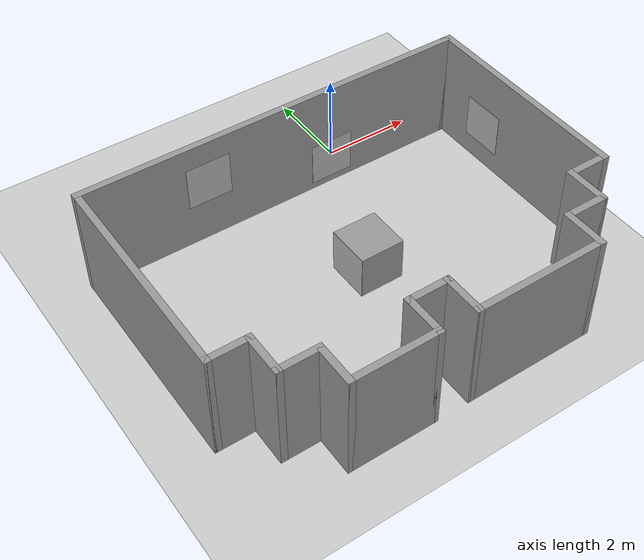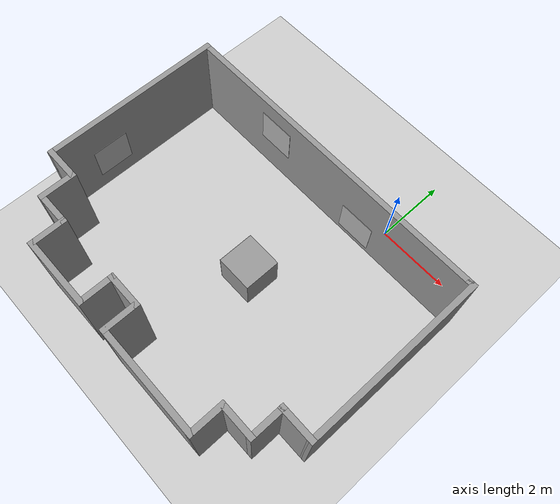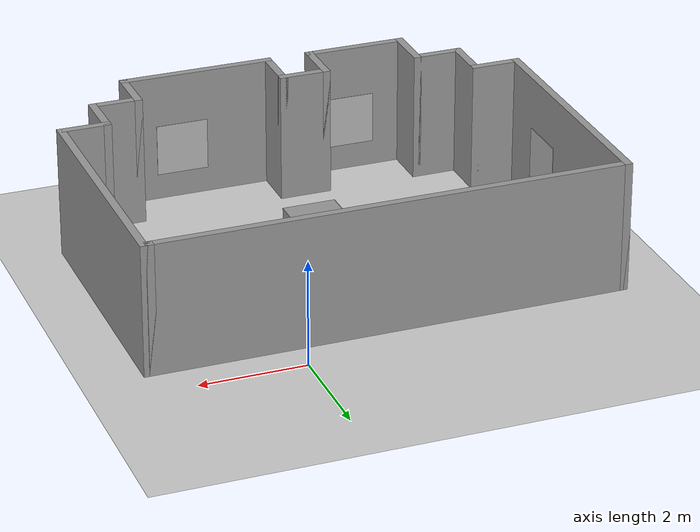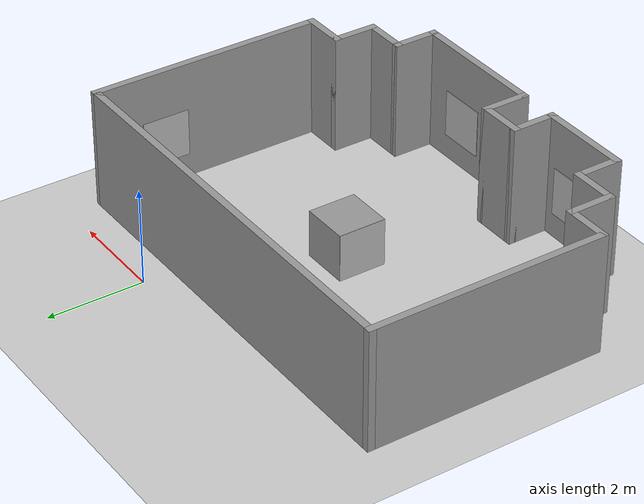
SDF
<sdf version="1.6">
 <world name="default">
  <light name="sun" type="directional">
   <pose>0 0 10 0 -0 0</pose>
   <diffuse>0.8 0.8 0.8 1</diffuse>
   <specular>0.2 0.2 0.2 1</specular>
   <attenuation>
    <range>1000</range>
    <constant>0.9</constant>
    <linear>0.01</linear>
    <quadratic>0.001</quadratic>
   </attenuation>
   <direction>-0.5 0.1 -0.9</direction>
  </light>
  <model name="ground_plane">
   <static>1</static>
   <link name="link">
    <collision name="collision">
     <geometry><plane><normal>0 0 1</normal><size>100 100</size></plane></geometry>
     <surface>
      <contact><collide_bitmask>65535</collide_bitmask></contact>
      <friction><ode><mu>100</mu><mu2>50</mu2></ode></friction>
     </surface>
    </collision>
    <visual name="visual">
     <cast_shadows>0</cast_shadows>
     <geometry><plane><normal>0 0 1</normal><size>100 100</size></plane></geometry>
     <material>
      <script><uri>file://media/materials/scripts/gazebo.material</uri><name>Gazebo/Grey</name></script>
     </material>
    </visual>
   </link>
  </model>
  <gravity>0 0 -9.8</gravity>
  <magnetic_field>6e-06 2.3e-05 -4.2e-05</magnetic_field>
  <atmosphere type="adiabatic"/>
  <physics name="default_physics" default="0" type="ode">
   <max_step_size>0.001</max_step_size>
   <real_time_factor>1</real_time_factor>
   <real_time_update_rate>1000</real_time_update_rate>
  </physics>
  <scene><ambient>0.4 0.4 0.4 1</ambient><background>0.7 0.7 0.7 1</background><shadows>1</shadows></scene>
  <audio><device>default</device></audio>
  <spherical_coordinates>
   <surface_model>EARTH_WGS84</surface_model>
   <latitude_deg>0</latitude_deg>
   <longitude_deg>0</longitude_deg>
   <elevation>0</elevation>
   <heading_deg>0</heading_deg>
  </spherical_coordinates>
  <model name="Apriltag36_11_00000">
   <link name="main">
    <visual name="main_Visual">
     <geometry><box><size>1 1 0.01</size></box></geometry>
     <material>
      <script>
       <uri>model://Apriltag36_11_00000/materials/scripts</uri>
       <uri>model://Apriltag36_11_00000/materials/textures</uri>
       <name>Apriltag36_11_00000</name>
      </script>
     </material>
    </visual>
   </link>
   <static>1</static>
   <pose>-1.98993 -3.50242 0.500001 -1.5708 -1.57079 1.5708</pose>
  </model>
  <light name="user_directional_light_0" type="directional">
   <pose>7.63569 -14.4857 1 0 -0 0</pose>
   <diffuse>0.5 0.5 0.5 1</diffuse>
   <specular>0.1 0.1 0.1 1</specular>
   <direction>0.1 0.1 -0.9</direction>
   <attenuation>
    <range>20</range>
    <constant>0.5</constant>
    <linear>0.01</linear>
    <quadratic>0.001</quadratic>
   </attenuation>
  </light>
  <model name="locland_room1">
   <pose>-1.785 -3.955 0 0 -0 0</pose>
   <link name="Wall_1">
    <collision name="Wall_1_Collision">
     <geometry><box><size>5 0.15 2.5</size></box></geometry>
     <pose>0 0 1.25 0 -0 0</pose>
    </collision>
    <visual name="Wall_1_Visual">
     <pose>0 0 1.25 0 -0 0</pose>
     <geometry><box><size>5 0.15 2.5</size></box></geometry>
     <material>
      <script><uri>file://media/materials/scripts/gazebo.material</uri><name>Gazebo/Grey</name></script>
      <ambient>1 1 1 1</ambient>
     </material>
     <meta><layer>0</layer></meta>
    </visual>
    <pose>-4.475 0.85 0 0 -0 -1.5708</pose>
   </link>
   <link name="Wall_10">
    <collision name="Wall_10_Collision">
     <geometry><box><size>1 0.15 2.5</size></box></geometry>
     <pose>0 0 1.25 0 -0 0</pose>
    </collision>
    <visual name="Wall_10_Visual">
     <pose>0 0 1.25 0 -0 0</pose>
     <geometry><box><size>1 0.15 2.5</size></box></geometry>
     <material>
      <script><uri>file://media/materials/scripts/gazebo.material</uri><name>Gazebo/Grey</name></script>
      <ambient>1 1 1 1</ambient>
     </material>
     <meta><layer>0</layer></meta>
    </visual>
    <pose>-0.5 -2.425 0 0 -0 0</pose>
   </link>
   <link name="Wall_11">
    <collision name="Wall_11_Collision">
     <geometry><box><size>1 0.15 2.5</size></box></geometry>
     <pose>0 0 1.25 0 -0 0</pose>
    </collision>
    <visual name="Wall_11_Visual">
     <pose>0 0 1.25 0 -0 0</pose>
     <geometry><box><size>1 0.15 2.5</size></box></geometry>
     <material>
      <script><uri>file://media/materials/scripts/gazebo.material</uri><name>Gazebo/Grey</name></script>
      <ambient>1 1 1 1</ambient>
     </material>
     <meta><layer>0</layer></meta>
    </visual>
    <pose>-0.075 -2.85 0 0 -0 -1.5708</pose>
   </link>
   <link name="Wall_12">
    <collision name="Wall_12_Collision">
     <geometry><box><size>3 0.15 2.5</size></box></geometry>
     <pose>0 0 1.25 0 -0 0</pose>
    </collision>
    <visual name="Wall_12_Visual">
     <pose>0 0 1.25 0 -0 0</pose>
     <geometry><box><size>3 0.15 2.5</size></box></geometry>
     <material>
      <script><uri>file://media/materials/scripts/gazebo.material</uri><name>Gazebo/Grey</name></script>
      <ambient>1 1 1 1</ambient>
     </material>
     <meta><layer>0</layer></meta>
    </visual>
    <pose>1.35 -3.275 0 0 -0 0</pose>
   </link>
   <link name="Wall_13">
    <collision name="Wall_13_Collision">
     <geometry><box><size>1 0.15 2.5</size></box></geometry>
     <pose>0 0 1.25 0 -0 0</pose>
    </collision>
    <visual name="Wall_13_Visual">
     <pose>0 0 1.25 0 -0 0</pose>
     <geometry><box><size>1 0.15 2.5</size></box></geometry>
     <material>
      <script><uri>file://media/materials/scripts/gazebo.material</uri><name>Gazebo/Grey</name></script>
      <ambient>1 1 1 1</ambient>
     </material>
     <meta><layer>0</layer></meta>
    </visual>
    <pose>2.775 -2.85 0 0 -0 1.5708</pose>
   </link>
   <link name="Wall_14">
    <collision name="Wall_14_Collision">
     <geometry><box><size>1 0.15 2.5</size></box></geometry>
     <pose>0 0 1.25 0 -0 0</pose>
    </collision>
    <visual name="Wall_14_Visual">
     <pose>0 0 1.25 0 -0 0</pose>
     <geometry><box><size>1 0.15 2.5</size></box></geometry>
     <material>
      <script><uri>file://media/materials/scripts/gazebo.material</uri><name>Gazebo/Grey</name></script>
      <ambient>1 1 1 1</ambient>
     </material>
     <meta><layer>0</layer></meta>
    </visual>
    <pose>3.2 -2.425 0 0 -0 0</pose>
   </link>
   <link name="Wall_15">
    <collision name="Wall_15_Collision">
     <geometry><box><size>1 0.15 2.5</size></box></geometry>
     <pose>0 0 1.25 0 -0 0</pose>
    </collision>
    <visual name="Wall_15_Visual">
     <pose>0 0 1.25 0 -0 0</pose>
     <geometry><box><size>1 0.15 2.5</size></box></geometry>
     <material>
      <script><uri>file://media/materials/scripts/gazebo.material</uri><name>Gazebo/Grey</name></script>
      <ambient>1 1 1 1</ambient>
     </material>
     <meta><layer>0</layer></meta>
    </visual>
    <pose>3.625 -2 0 0 -0 1.5708</pose>
   </link>
   <link name="Wall_16">
    <collision name="Wall_16_Collision">
     <geometry><box><size>1 0.15 2.5</size></box></geometry>
     <pose>0 0 1.25 0 -0 0</pose>
    </collision>
    <visual name="Wall_16_Visual">
     <pose>0 0 1.25 0 -0 0</pose>
     <geometry><box><size>1 0.15 2.5</size></box></geometry>
     <material>
      <script><uri>file://media/materials/scripts/gazebo.material</uri><name>Gazebo/Grey</name></script>
      <ambient>1 1 1 1</ambient>
     </material>
     <meta><layer>0</layer></meta>
    </visual>
    <pose>4.05 -1.575 0 0 -0 0</pose>
   </link>
   <link name="Wall_17">
    <collision name="Wall_17_Collision">
     <geometry><box><size>5 0.15 2.5</size></box></geometry>
     <pose>0 0 1.25 0 -0 0</pose>
    </collision>
    <visual name="Wall_17_Visual">
     <pose>0 0 1.25 0 -0 0</pose>
     <geometry><box><size>5 0.15 2.5</size></box></geometry>
     <material>
      <script><uri>file://media/materials/scripts/gazebo.material</uri><name>Gazebo/Grey</name></script>
      <ambient>1 1 1 1</ambient>
     </material>
     <meta><layer>0</layer></meta>
    </visual>
    <pose>4.475 0.85 0 0 -0 1.5708</pose>
   </link>
   <link name="Wall_29">
    <collision name="Wall_29_Collision">
     <geometry><box><size>9 0.15 2.5</size></box></geometry>
     <pose>0 0 1.25 0 -0 0</pose>
    </collision>
    <visual name="Wall_29_Visual">
     <pose>0 0 1.25 0 -0 0</pose>
     <geometry><box><size>9 0.15 2.5</size></box></geometry>
     <material>
      <script><uri>file://media/materials/scripts/gazebo.material</uri><name>Gazebo/Grey</name></script>
      <ambient>1 1 1 1</ambient>
     </material>
     <meta><layer>0</layer></meta>
    </visual>
    <pose>-0.05 3.275 0 0 -0 0</pose>
   </link>
   <link name="Wall_30">
    <collision name="Wall_30_Collision">
     <geometry><box><size>0.15 0.15 2.5</size></box></geometry>
     <pose>0 0 1.25 0 -0 0</pose>
    </collision>
    <visual name="Wall_30_Visual">
     <pose>0 0 1.25 0 -0 0</pose>
     <geometry><box><size>0.15 0.15 2.5</size></box></geometry>
     <material>
      <script><uri>file://media/materials/scripts/gazebo.material</uri><name>Gazebo/Grey</name></script>
      <ambient>1 1 1 1</ambient>
     </material>
     <meta><layer>0</layer></meta>
    </visual>
    <pose>4.375 3.275 0 0 -0 0</pose>
   </link>
   <link name="Wall_4">
    <collision name="Wall_4_Collision">
     <geometry><box><size>1 0.15 2.5</size></box></geometry>
     <pose>0 0 1.25 0 -0 0</pose>
    </collision>
    <visual name="Wall_4_Visual">
     <pose>0 0 1.25 0 -0 0</pose>
     <geometry><box><size>1 0.15 2.5</size></box></geometry>
     <material>
      <script><uri>file://media/materials/scripts/gazebo.material</uri><name>Gazebo/Grey</name></script>
      <ambient>1 1 1 1</ambient>
     </material>
     <meta><layer>0</layer></meta>
    </visual>
    <pose>-4.05 -1.575 0 0 -0 0</pose>
   </link>
   <link name="Wall_5">
    <collision name="Wall_5_Collision">
     <geometry><box><size>1 0.15 2.5</size></box></geometry>
     <pose>0 0 1.25 0 -0 0</pose>
    </collision>
    <visual name="Wall_5_Visual">
     <pose>0 0 1.25 0 -0 0</pose>
     <geometry><box><size>1 0.15 2.5</size></box></geometry>
     <material>
      <script><uri>file://media/materials/scripts/gazebo.material</uri><name>Gazebo/Grey</name></script>
      <ambient>1 1 1 1</ambient>
     </material>
     <meta><layer>0</layer></meta>
    </visual>
    <pose>-3.625 -2 0 0 -0 -1.5708</pose>
   </link>
   <link name="Wall_6">
    <collision name="Wall_6_Collision">
     <geometry><box><size>1 0.15 2.5</size></box></geometry>
     <pose>0 0 1.25 0 -0 0</pose>
    </collision>
    <visual name="Wall_6_Visual">
     <pose>0 0 1.25 0 -0 0</pose>
     <geometry><box><size>1 0.15 2.5</size></box></geometry>
     <material>
      <script><uri>file://media/materials/scripts/gazebo.material</uri><name>Gazebo/Grey</name></script>
      <ambient>1 1 1 1</ambient>
     </material>
     <meta><layer>0</layer></meta>
    </visual>
    <pose>-3.2 -2.425 0 0 -0 0</pose>
   </link>
   <link name="Wall_7">
    <collision name="Wall_7_Collision">
     <geometry><box><size>1 0.15 2.5</size></box></geometry>
     <pose>0 0 1.25 0 -0 0</pose>
    </collision>
    <visual name="Wall_7_Visual">
     <pose>0 0 1.25 0 -0 0</pose>
     <geometry><box><size>1 0.15 2.5</size></box></geometry>
     <material>
      <script><uri>file://media/materials/scripts/gazebo.material</uri><name>Gazebo/Grey</name></script>
      <ambient>1 1 1 1</ambient>
     </material>
     <meta><layer>0</layer></meta>
    </visual>
    <pose>-2.775 -2.85 0 0 -0 -1.5708</pose>
   </link>
   <link name="Wall_8">
    <collision name="Wall_8_Collision">
     <geometry><box><size>2 0.15 2.5</size></box></geometry>
     <pose>0 0 1.25 0 -0 0</pose>
    </collision>
    <visual name="Wall_8_Visual">
     <pose>0 0 1.25 0 -0 0</pose>
     <geometry><box><size>2 0.15 2.5</size></box></geometry>
     <material>
      <script><uri>file://media/materials/scripts/gazebo.material</uri><name>Gazebo/Grey</name></script>
      <ambient>1 1 1 1</ambient>
     </material>
     <meta><layer>0</layer></meta>
    </visual>
    <pose>-1.85 -3.275 0 0 -0 0</pose>
   </link>
   <link name="Wall_9">
    <collision name="Wall_9_Collision">
     <geometry><box><size>1 0.15 2.5</size></box></geometry>
     <pose>0 0 1.25 0 -0 0</pose>
    </collision>
    <visual name="Wall_9_Visual">
     <pose>0 0 1.25 0 -0 0</pose>
     <geometry><box><size>1 0.15 2.5</size></box></geometry>
     <material>
      <script><uri>file://media/materials/scripts/gazebo.material</uri><name>Gazebo/Grey</name></script>
      <ambient>1 1 1 1</ambient>
     </material>
     <meta><layer>0</layer></meta>
    </visual>
    <pose>-0.925 -2.85 0 0 -0 1.5708</pose>
   </link>
   <static>1</static>
  </model>
  <model name="unit_box">
   <pose>-1.48492 -3.50242 0.499995 0 1e-05 0</pose>
   <link name="link">
    <inertial>
     <mass>1</mass>
     <inertia>
      <ixx>0.166667</ixx>
      <ixy>0</ixy>
      <ixz>0</ixz>
      <iyy>0.166667</iyy>
      <iyz>0</iyz>
      <izz>0.166667</izz>
     </inertia>
    </inertial>
    <collision name="collision"><geometry><box><size>1 1 1</size></box></geometry></collision>
    <visual name="visual">
     <geometry><box><size>1 1 1</size></box></geometry>
     <material>
      <script><name>Gazebo/Grey</name><uri>file://media/materials/scripts/gazebo.material</uri></script>
     </material>
    </visual>
   </link>
  </model>
  <model name="Apriltag36_11_00001">
   <link name="main">
    <visual name="main_Visual">
     <geometry><box><size>1 1 0.01</size></box></geometry>
     <material>
      <script>
       <uri>model://Apriltag36_11_00001/materials/scripts</uri>
       <uri>model://Apriltag36_11_00001/materials/textures</uri>
       <name>Apriltag36_11_00001</name>
      </script>
     </material>
    </visual>
   </link>
   <static>1</static>
   <pose>-3.46833 -7.15 1 1.5708 -0 0</pose>
  </model>
  <model name="Apriltag36_11_00002">
   <link name="main">
    <visual name="main_Visual">
     <geometry><box><size>1 1 0.01</size></box></geometry>
     <material>
      <script>
       <uri>model://Apriltag36_11_00002/materials/scripts</uri>
       <uri>model://Apriltag36_11_00002/materials/textures</uri>
       <name>Apriltag36_11_00002</name>
      </script>
     </material>
    </visual>
   </link>
   <static>1</static>
   <pose>-6.18 -4.105 1 -1.5708 -1.57079 1.57079</pose>
  </model>
  <model name="Apriltag36_11_00003">
   <link name="main">
    <visual name="main_Visual">
     <geometry><box><size>1 1 0.01</size></box></geometry>
     <material>
      <script>
       <uri>model://Apriltag36_11_00003/materials/scripts</uri>
       <uri>model://Apriltag36_11_00003/materials/textures</uri>
       <name>Apriltag36_11_00003</name>
      </script>
     </material>
    </visual>
   </link>
   <static>1</static>
   <pose>2.61 -2.105 0.999999 -1.5708 1.57079 -1.57079</pose>
  </model>
  <model name="Apriltag36_11_00004">
   <link name="main">
    <visual name="main_Visual">
     <geometry><box><size>1 1 0.01</size></box></geometry>
     <material>
      <script>
       <uri>model://Apriltag36_11_00004/materials/scripts</uri>
       <uri>model://Apriltag36_11_00004/materials/textures</uri>
       <name>Apriltag36_11_00004</name>
      </script>
     </material>
    </visual>
   </link>
   <static>1</static>
   <pose>-0.501667 -0.76 0.666667 -1.5708 0 0</pose>
  </model>
  <model name="Apriltag36_11_00005">
   <link name="main">
    <visual name="main_Visual">
     <geometry><box><size>1 1 0.01</size></box></geometry>
     <material>
      <script>
       <uri>model://Apriltag36_11_00005/materials/scripts</uri>
       <uri>model://Apriltag36_11_00005/materials/textures</uri>
       <name>Apriltag36_11_00005</name>
      </script>
     </material>
    </visual>
   </link>
   <static>1</static>
   <pose>-0.101667 -7.15 1 1.5708 -0 0</pose>
  </model>
  <model name="Apriltag36_11_00006">
   <link name="main">
    <visual name="main_Visual">
     <geometry><box><size>1 1 0.01</size></box></geometry>
     <material>
      <script>
       <uri>model://Apriltag36_11_00006/materials/scripts</uri>
       <uri>model://Apriltag36_11_00006/materials/textures</uri>
       <name>Apriltag36_11_00006</name>
      </script>
     </material>
    </visual>
   </link>
   <static>1</static>
   <pose>-3.50167 -0.76 1.5 -1.5708 0 0</pose>
  </model>
 </world>
</sdf>
